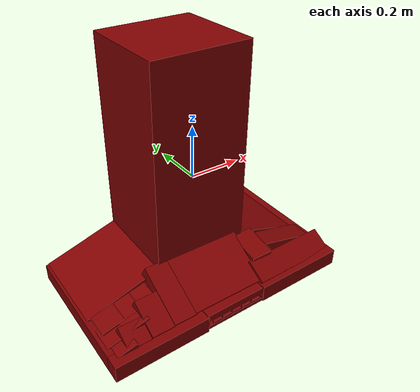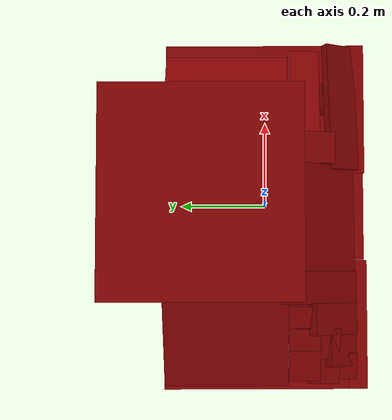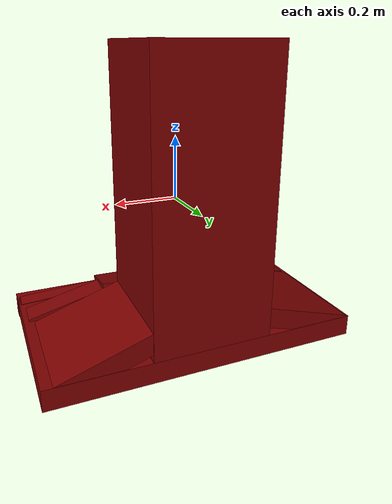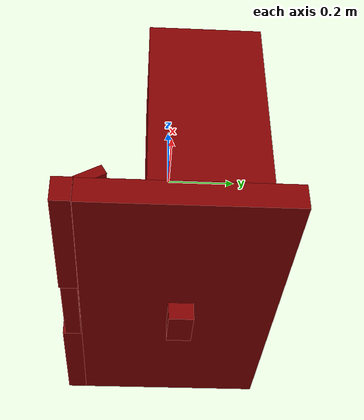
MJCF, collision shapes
<?xml version='1.0' encoding='UTF-8'?>
<mujoco model="model">
  <compiler angle="radian"/>
  <asset>
    <mesh file="visuals/Body001.obj" name="Body001_vis"/>
    <mesh file="visuals/Button001.obj" name="Button001_vis"/>
    <mesh file="visuals/Button002.obj" name="Button002_vis"/>
    <mesh file="visuals/Button003.obj" name="Button003_vis"/>
    <mesh file="visuals/Button004.obj" name="Button004_vis"/>
    <mesh file="visuals/Button005.obj" name="Button005_vis"/>
    <texture file="visuals/T_BC001.png" name="Body001_material" type="2d"/>
    <material name="Body001_material" rgba="1 1 1 1.0" texture="Body001_material" shininess="0.4472135901451111" specular="0.3103448502657381"/>
    <texture file="visuals/T_BC001.png" name="Button001_material" type="2d"/>
    <material name="Button001_material" rgba="1 1 1 1.0" texture="Button001_material" shininess="0.4472135901451111" specular="0.3103448502657381"/>
    <texture file="visuals/T_BC001.png" name="Button002_material" type="2d"/>
    <material name="Button002_material" rgba="1 1 1 1.0" texture="Button002_material" shininess="0.4472135901451111" specular="0.3103448502657381"/>
    <texture file="visuals/T_BC001.png" name="Button003_material" type="2d"/>
    <material name="Button003_material" rgba="1 1 1 1.0" texture="Button003_material" shininess="0.4472135901451111" specular="0.3103448502657381"/>
    <texture file="visuals/T_BC001.png" name="Button004_material" type="2d"/>
    <material name="Button004_material" rgba="1 1 1 1.0" texture="Button004_material" shininess="0.4472135901451111" specular="0.3103448502657381"/>
    <texture file="visuals/T_BC001.png" name="Button005_material" type="2d"/>
    <material name="Button005_material" rgba="1 1 1 1.0" texture="Button005_material" shininess="0.4472135901451111" specular="0.3103448502657381"/>
  </asset>
  <default>
    <default class="visual">
      <geom conaffinity="0" contype="0" group="1" type="mesh"/>
    </default>
    <default class="collision">
      <geom group="0" rgba="0.5 0 0 0.5"/>
    </default>
    <default class="spawn">
      <geom group="0" rgba="1 1 1 0.5" contype="0" conaffinity="0"/>
      <site group="0" rgba="1 1 1 0.5"/>
    </default>
    <default class="region">
      <geom group="1" conaffinity="0" contype="0" rgba="0 1 0 0"/>
    </default>
  </default>
  <worldbody>
    <body>
      <body name="object">
        <geom mesh="Body001_vis" type="mesh" solimp="0.998 0.998 0.001" solref="0.001 1" density="100" friction="0.95 0.3 0.1" class="visual" material="Body001_material"/>
        <geom class="collision" type="box" pos="0.00064009 0.02580616 -0.42287130" size="0.5037598013877869 0.26696163415908813 0.03394800052046776" quat="1.0 0.0 0.0 0.0"/>
        <geom class="collision" type="box" pos="-0.31719437 -0.26831469 -0.42287130" size="0.1857481598854065 0.02729858085513115 0.03394797071814537" quat="1.0 0.0 0.0 0.0"/>
        <geom class="collision" type="box" pos="0.31570554 -0.26697045 -0.42287130" size="0.19056837260723114 0.025034017860889435 0.03394797071814537" quat="1.0 0.0 0.0 0.0"/>
        <geom class="collision" type="box" pos="0.31266347 0.11266351 -0.37030990" size="0.15896327793598175 0.17897813022136688 0.032223429530858994" quat="0.987186074256897 0.0 0.15957336127758026 0.0"/>
        <geom class="collision" type="box" pos="-0.33161058 0.11266351 -0.37030990" size="0.15896327793598175 0.17897813022136688 0.032223429530858994" quat="0.14466482400894165 0.0 0.98948073387146 0.0"/>
        <geom class="collision" type="box" pos="-0.01238798 -0.11606847 -0.33617727" size="0.15896327793598175 0.1456536054611206 0.032223429530858994" quat="0.008614168502390385 -0.0006598452455364168 -0.9682444334030151 -0.24985621869564056"/>
        <geom class="collision" type="box" pos="-0.20751574 -0.14893661 -0.34842603" size="0.04558514803647995 0.11402983963489532 0.03025333397090435" quat="0.008614168502390385 -0.0006598452455364168 -0.9682444334030151 -0.24985621869564056"/>
        <geom class="collision" type="box" pos="-0.29803544 -0.19088629 -0.36894731" size="0.04558497667312622 0.06938584893941879 0.02718590945005417" quat="0.008614168502390385 -0.0006598452455364168 -0.9682444334030151 -0.24985621869564056"/>
        <geom class="collision" type="box" pos="-0.38909295 -0.21680780 -0.37989436" size="0.045580461621284485 0.042890068143606186 0.017412422224879265" quat="0.008614168502390385 -0.0006598452455364168 -0.9682444334030151 -0.24985621869564056"/>
        <geom class="collision" type="box" pos="-0.43163591 -0.11301628 -0.37875216" size="0.04558432102203369 0.04558131843805313 0.012735934928059578" quat="0.08819101750850677 0.703055739402771 0.700617253780365 0.08408591896295547"/>
        <geom class="collision" type="box" pos="-0.30200266 -0.11301628 -0.34952704" size="0.04558432102203369 0.04558131843805313 0.012735934928059578" quat="0.08819101750850677 0.703055739402771 0.700617253780365 0.08408591896295547"/>
        <geom class="collision" type="box" pos="0.31599716 -0.22037947 -0.37510599" size="0.04799279943108559 0.18398497998714447 0.01356036402285099" quat="0.16573308408260345 -0.6903117895126343 0.6758056879043579 0.19821415841579437"/>
        <geom class="collision" type="box" pos="0.34363080 -0.20567158 -0.40357907" size="0.04558431729674339 0.04558131843805313 0.012735934928059578" quat="0.10011235624551773 -0.6985071301460266 0.6562744379043579 0.2671501040458679"/>
        <geom class="collision" type="box" pos="0.35153974 -0.11522005 -0.37389175" size="0.1342732012271881 0.04291483759880066 0.024106070399284363" quat="0.008804059587419033 -0.9924291968345642 0.004050715360790491 0.1224353238940239"/>
        <geom class="collision" type="box" pos="0.19155692 -0.13033630 -0.32707976" size="0.04558156430721283 0.06852714717388153 0.016237616539001465" quat="0.09637093544006348 -0.995307981967926 0.003566374769434333 -0.007869507186114788"/>
        <geom class="collision" type="box" pos="-0.00510436 0.11143268 0.04978125" size="0.19184544682502747 0.18133512139320374 0.44018131494522095" quat="1.0 0.0 0.0 0.0"/>
        <geom class="collision" type="box" pos="-0.00064488 0.03036357 -0.47955949" size="0.06174424663186073 0.0338268056511879 0.02607591450214386" quat="1.0 0.0 0.0 0.0"/>
        <geom class="collision" type="box" pos="-0.00255465 -0.26584899 -0.44955705" size="0.12739261984825134 0.02198578417301178 0.007262250408530235" quat="1.0 0.0 0.0 0.0"/>
        <geom class="collision" type="box" pos="-0.00255465 -0.26584899 -0.40243329" size="0.12739261984825134 0.02198578417301178 0.012835061177611351" quat="1.0 0.0 0.0 0.0"/>
        <geom class="collision" type="box" pos="-0.36666274 -0.11301628 -0.36465354" size="0.04558432102203369 0.04558131843805313 0.012735934928059578" quat="0.08819101750850677 0.703055739402771 0.700617253780365 0.08408591896295547"/>
        <geom class="collision" type="box" pos="-0.36666274 -0.16779558 -0.36465354" size="0.04558432102203369 0.04558131843805313 0.012735934928059578" quat="0.08819101750850677 0.703055739402771 0.700617253780365 0.08408591896295547"/>
        <geom class="collision" type="box" pos="-0.44082224 -0.16779558 -0.38866429" size="0.04558432102203369 0.04558131843805313 0.012735934928059578" quat="0.08819101750850677 0.703055739402771 0.700617253780365 0.08408591896295547"/>
        <geom class="collision" type="box" pos="-0.44082224 -0.21837109 -0.39354901" size="0.04558432102203369 0.04558131843805313 0.012735934928059578" quat="0.08819101750850677 0.703055739402771 0.700617253780365 0.08408591896295547"/>
        <body name="Button001">
          <joint axis="0.0 0.9999999403953552 0.0" pos="-0.08777314 -0.28983393 -0.42941339" limited="true" name="Button001_joint" range="0.0 0.003" type="slide" damping="1" frictionloss="1" armature=".01" stiffness="0.05"/>
          <geom mesh="Button001_vis" type="mesh" solimp="0.998 0.998 0.001" solref="0.001 1" density="100" friction="0.95 0.3 0.1" class="visual" material="Button001_material"/>
          <geom class="collision" type="box" pos="-0.08789238 -0.28775412 -0.43009843" size="0.019130781292915344 0.004477586131542921 0.005090134683996439" quat="1.0 0.0 0.0 0.0"/>
        </body>
        <body name="Button002">
          <joint axis="0.0 0.9999999403953552 0.0" pos="-0.04429620 -0.28983384 -0.42941339" limited="true" name="Button002_joint" range="0.0 0.003" type="slide" damping="1" frictionloss="1" armature=".01" stiffness="0.05"/>
          <geom mesh="Button002_vis" type="mesh" solimp="0.998 0.998 0.001" solref="0.001 1" density="100" friction="0.95 0.3 0.1" class="visual" material="Button002_material"/>
          <geom class="collision" type="box" pos="-0.04534010 -0.28775412 -0.43009843" size="0.019130809232592583 0.004477586131542921 0.005090134683996439" quat="1.0 0.0 0.0 0.0"/>
        </body>
        <body name="Button003">
          <joint axis="0.0 0.9999999403953552 0.0" pos="-0.00095392 -0.28983384 -0.42941339" limited="true" name="Button003_joint" range="0.0 0.003" type="slide" damping="1" frictionloss="1" armature=".01" stiffness="0.05"/>
          <geom mesh="Button003_vis" type="mesh" solimp="0.998 0.998 0.001" solref="0.001 1" density="100" friction="0.95 0.3 0.1" class="visual" material="Button003_material"/>
          <geom class="collision" type="box" pos="-0.00164125 -0.28775412 -0.43009843" size="0.01913083903491497 0.004477586131542921 0.005090134683996439" quat="1.0 0.0 0.0 0.0"/>
        </body>
        <body name="Button004">
          <joint axis="0.0 0.9999999403953552 0.0" pos="0.04431940 -0.28983396 -0.42941339" limited="true" name="Button004_joint" range="0.0 0.003" type="slide" damping="1" frictionloss="1" armature=".01" stiffness="0.05"/>
          <geom mesh="Button004_vis" type="mesh" solimp="0.998 0.998 0.001" solref="0.001 1" density="100" friction="0.95 0.3 0.1" class="visual" material="Button004_material"/>
          <geom class="collision" type="box" pos="0.04350705 -0.28775412 -0.43009843" size="0.019130868837237358 0.004477586131542921 0.005090134683996439" quat="1.0 0.0 0.0 0.0"/>
        </body>
        <body name="Button005">
          <joint axis="0.0 1.0 0.0" pos="0.08904840 -0.28983393 -0.42941339" limited="true" name="Button005_joint" range="0.0 0.003" type="slide" damping="1" frictionloss="1" armature=".01" stiffness="0.05"/>
          <geom mesh="Button005_vis" type="mesh" solimp="0.998 0.998 0.001" solref="0.001 1" density="100" friction="0.95 0.3 0.1" class="visual" material="Button005_material"/>
          <geom class="collision" type="box" pos="0.08968077 -0.28775412 -0.43009843" size="0.019130896776914597 0.004477586131542921 0.005090134683996439" quat="1.0 0.0 0.0 0.0"/>
        </body>
        <geom class="region" name="reg_main" type="box" pos="-0.0002617749999999919 0.0024479550000000017 -2.1999999999522402e-07" size="0.504001695 0.489424065 0.29084618"/>
      </body>
    </body>
  </worldbody>
  <actuator>
    <motor name="Button001_joint_actuator" joint="Button001_joint" gear="0.5"/>
    <motor name="Button002_joint_actuator" joint="Button002_joint" gear="0.5"/>
    <motor name="Button003_joint_actuator" joint="Button003_joint" gear="0.5"/>
    <motor name="Button004_joint_actuator" joint="Button004_joint" gear="0.5"/>
    <motor name="Button005_joint_actuator" joint="Button005_joint" gear="0.5"/>
  </actuator>
</mujoco>
